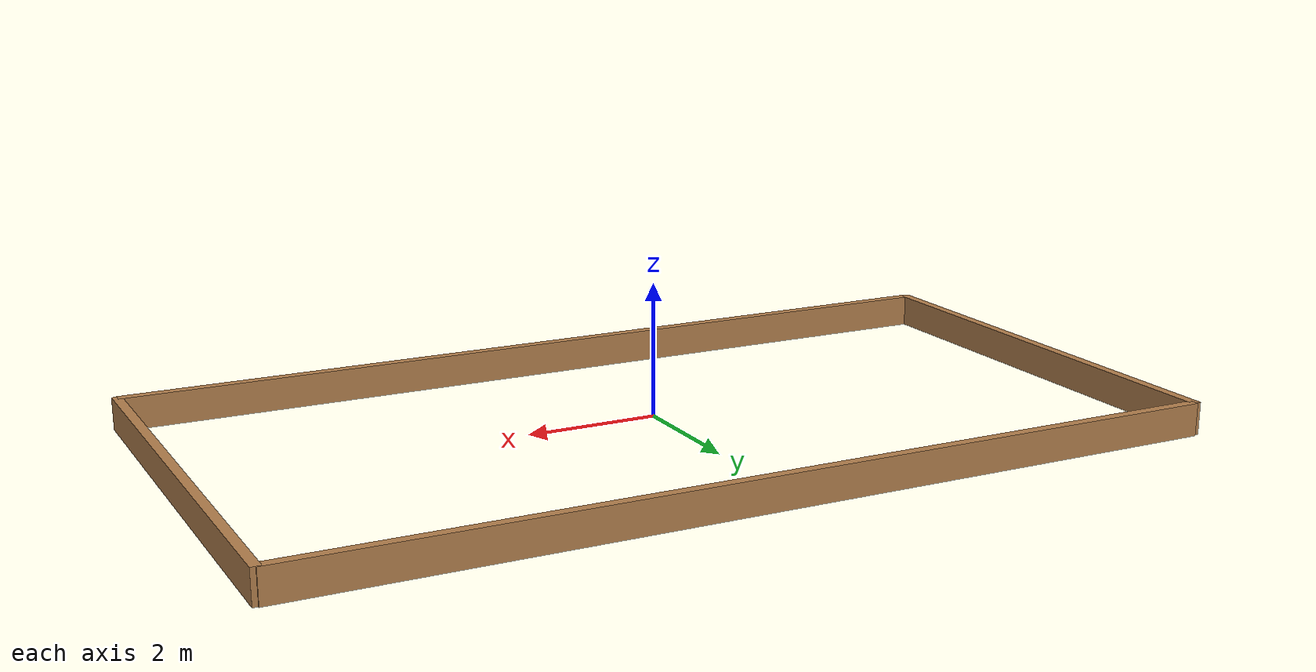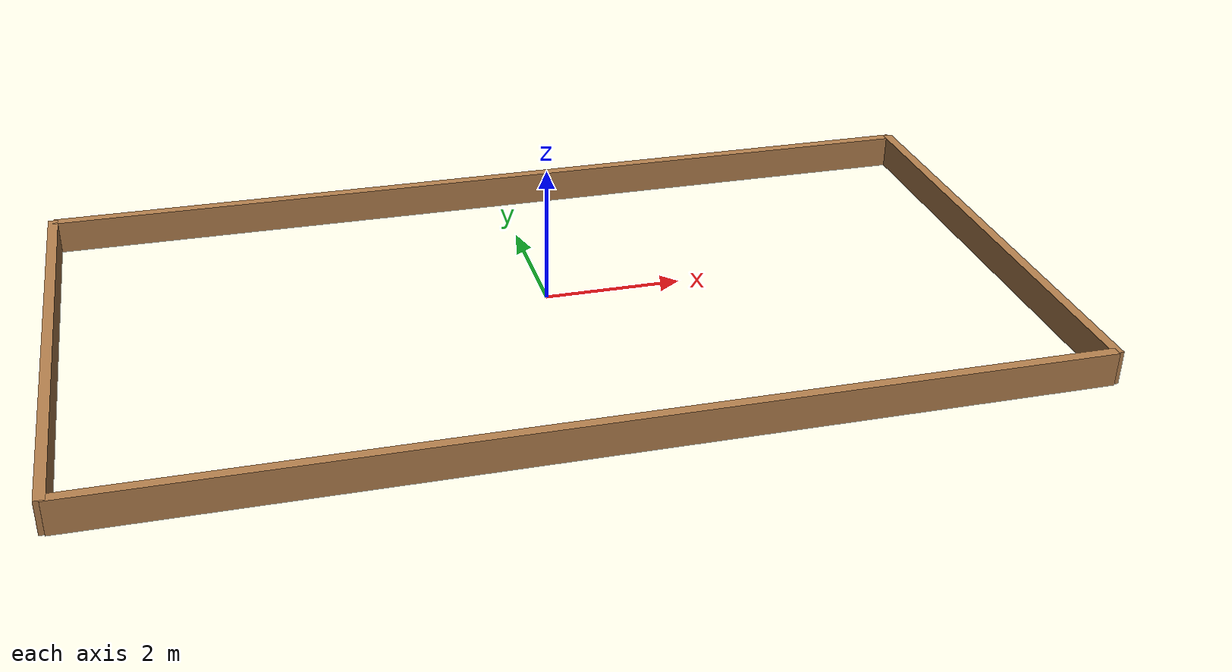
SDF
<?xml version='1.0'?>
<sdf version='1.6'>
  <model name='turtlebot3_square'>
    <pose frame=''>0 0 0 0 0 0</pose>
    <!-- Paredes Verticais -->
    <link name='Wall_1'>
      <collision name='Wall_1_Collision'>
        <geometry>
          <box>
            <size>7.5 0.15 0.5</size>
          </box>
        </geometry>
        <pose frame=''>0 0 0.25 0 0 0</pose>
      </collision>
      <visual name='Wall_1_Visual'>
        <geometry>
          <box>
            <size>7.5 0.15 0.5</size>
          </box>
        </geometry>
        <material>
          <script>
            <uri>file://media/materials/scripts/gazebo.material</uri>
            <name>Gazebo/Wood</name>
          </script>
          <ambient>1 1 1 1</ambient>
        </material>
      </visual>
      <pose frame=''>-7.0 0 0 0 0 1.5708</pose>
    </link>
    <link name='Wall_3'>
      <collision name='Wall_3_Collision'>
        <geometry>
          <box>
            <size>7.5 0.15 0.5</size>
          </box>
        </geometry>
        <pose frame=''>0 0 0.25 0 0 0</pose>
      </collision>
      <visual name='Wall_3_Visual'>
        <geometry>
          <box>
            <size>7.5 0.15 0.5</size>
          </box>
        </geometry>
        <material>
          <script>
            <uri>file://media/materials/scripts/gazebo.material</uri>
            <name>Gazebo/Wood</name>
          </script>
          <ambient>1 1 1 1</ambient>
        </material>
      </visual>
      <pose frame=''>7.0 0 0 0 0 -1.5708</pose>
    </link>

    <!-- Paredes Horizontais -->
    <link name='Wall_2'>
      <collision name='Wall_2_Collision'>
        <geometry>
          <box>
            <size>14 0.15 0.5</size>
          </box>
        </geometry>
        <pose frame=''>0 3.7 0.25 0 0 0</pose>
      </collision>
      <visual name='Wall_2_Visual'>
        <geometry>
          <box>
            <size>14 0.15 0.5</size>
          </box>
        </geometry>
        <material>
          <script>
            <uri>file://media/materials/scripts/gazebo.material</uri>
            <name>Gazebo/Wood</name>
          </script>
          <ambient>1 1 1 1</ambient>
        </material>
      </visual>
      <pose frame=''>0 3.7 0 0 0 0</pose>
    </link>
    <link name='Wall_4'>
      <collision name='Wall_4_Collision'>
        <geometry>
          <box>
            <size>14 0.15 0.5</size>
          </box>
        </geometry>
        <pose frame=''>0 3.7 0.25 0 0 0</pose>
      </collision>
      <visual name='Wall_4_Visual'>
        <geometry>
          <box>
            <size>14 0.15 0.5</size>
          </box>
        </geometry>
        <material>
          <script>
            <uri>file://media/materials/scripts/gazebo.material</uri>
            <name>Gazebo/Wood</name>
          </script>
          <ambient>1 1 1 1</ambient>
        </material>
      </visual>
      <pose frame=''>0 -3.7 0 0 -0 3.14159</pose>
    </link>
    <static>1</static>
  </model>
</sdf>
